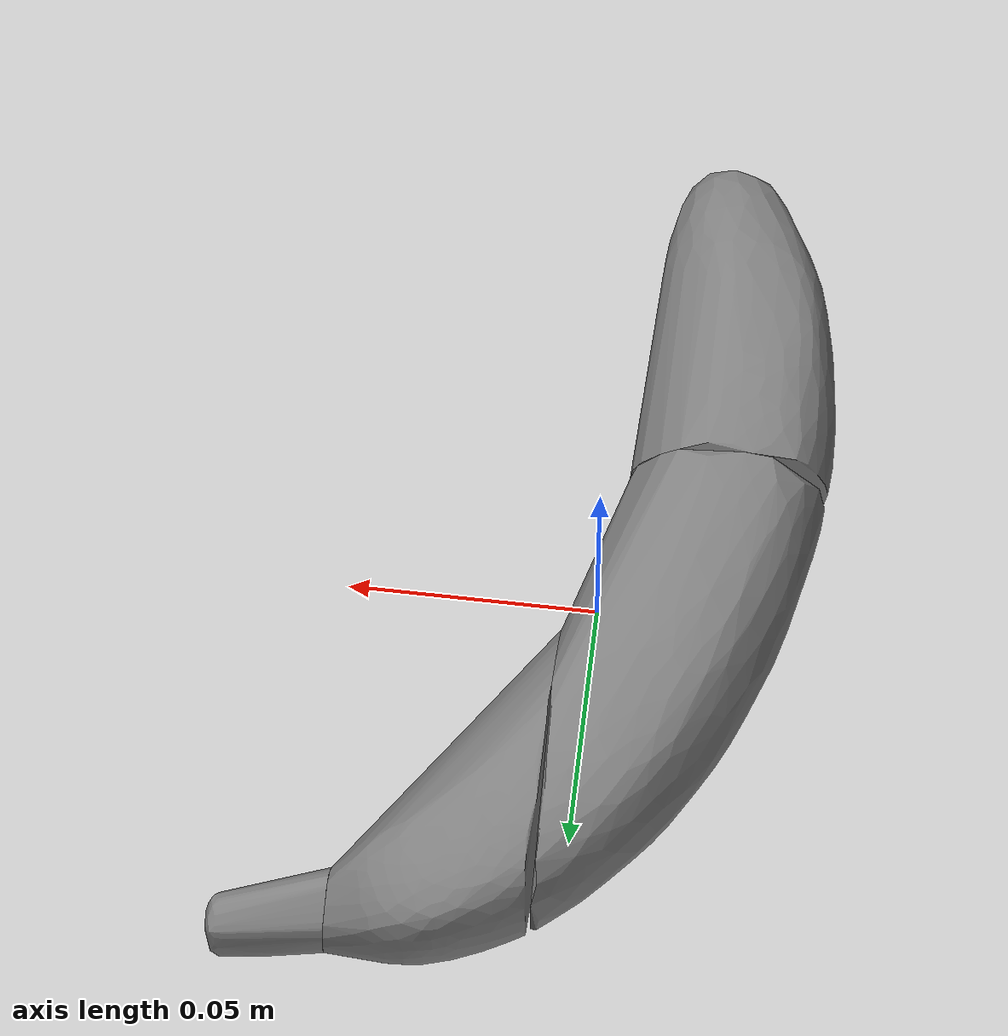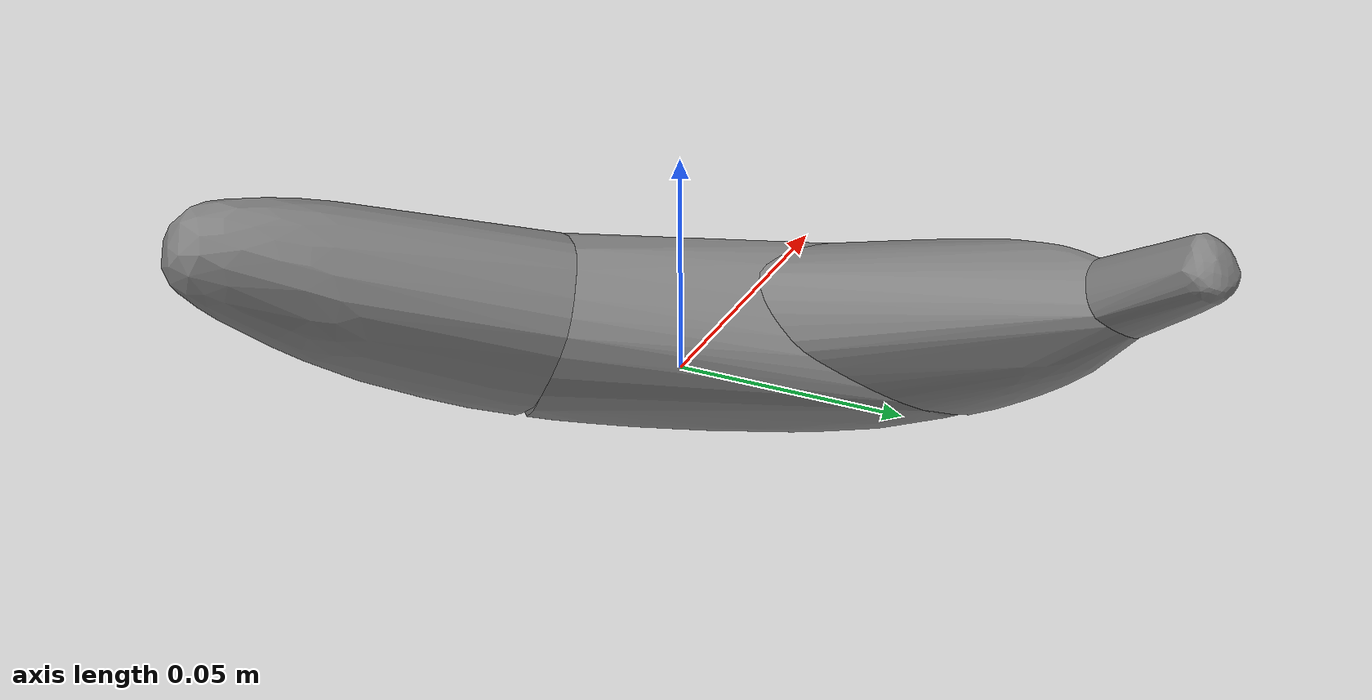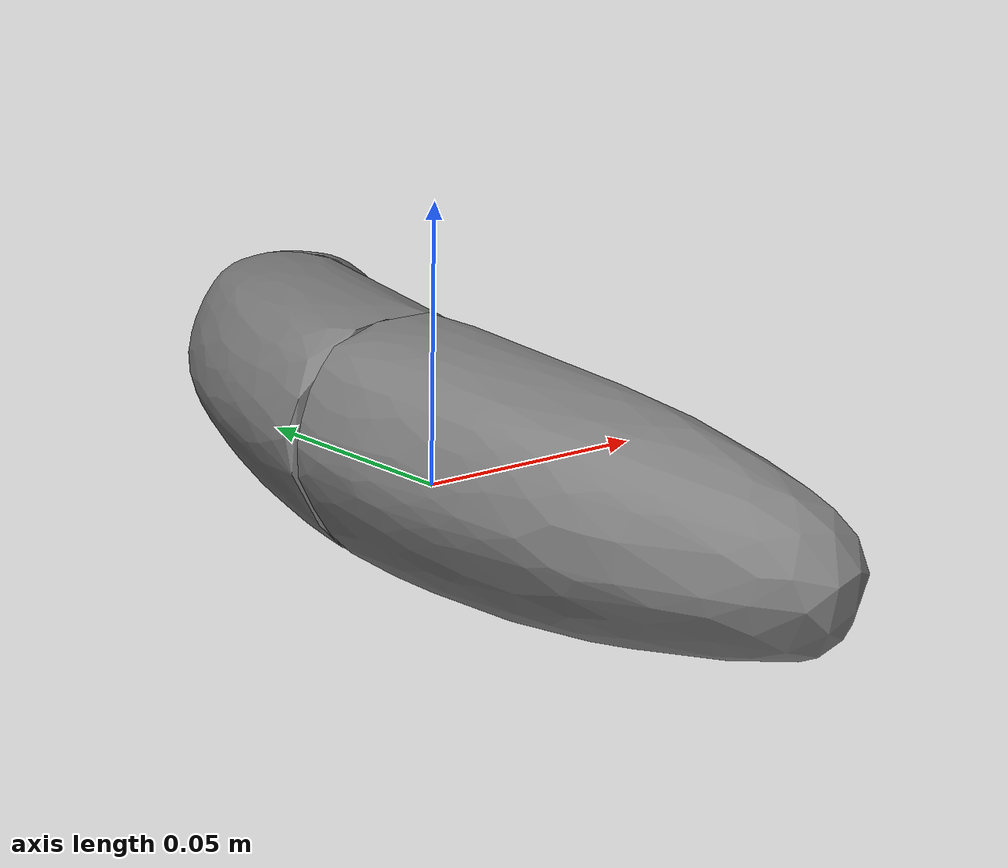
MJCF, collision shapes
<mujoco model="ycb_011_banana">
  <compiler meshdir="meshes" texturedir="meshes" angle="radian"/>
  <default>
    <default class="visual"><geom contype="0" conaffinity="0" group="2" density="0"/></default>
    <default class="collision"><geom group="3"/></default>
  </default>
  <asset>
    <texture name="ycb_011_banana_tex" type="2d" file="ycb_011_banana_texture.png"/>
    <material name="ycb_011_banana_mat" texture="ycb_011_banana_tex" specular="0.2" shininess="0.3"/>
    <mesh name="ycb_011_banana_visual" file="ycb_011_banana_visual.obj"/>
    <mesh name="ycb_011_banana_hull0" file="ycb_011_banana_hull0.obj"/>
    <mesh name="ycb_011_banana_hull1" file="ycb_011_banana_hull1.obj"/>
    <mesh name="ycb_011_banana_hull2" file="ycb_011_banana_hull2.obj"/>
    <mesh name="ycb_011_banana_hull3" file="ycb_011_banana_hull3.obj"/>
  </asset>
  <worldbody>
    <body name="object" pos="0 0 0">
      <freejoint name="object_free"/>
      <geom type="mesh" mesh="ycb_011_banana_visual" material="ycb_011_banana_mat" class="visual"/>
      <geom type="mesh" mesh="ycb_011_banana_hull0" class="collision"/>
      <geom type="mesh" mesh="ycb_011_banana_hull1" class="collision"/>
      <geom type="mesh" mesh="ycb_011_banana_hull2" class="collision"/>
      <geom type="mesh" mesh="ycb_011_banana_hull3" class="collision"/>
    </body>
  </worldbody>
</mujoco>
